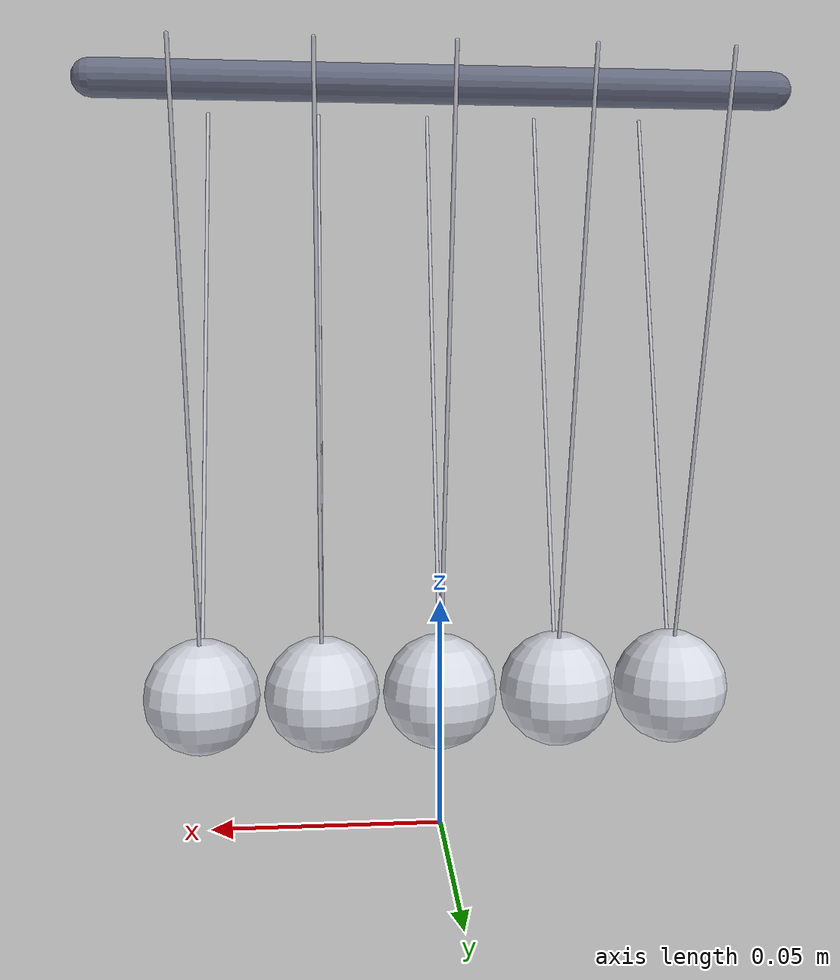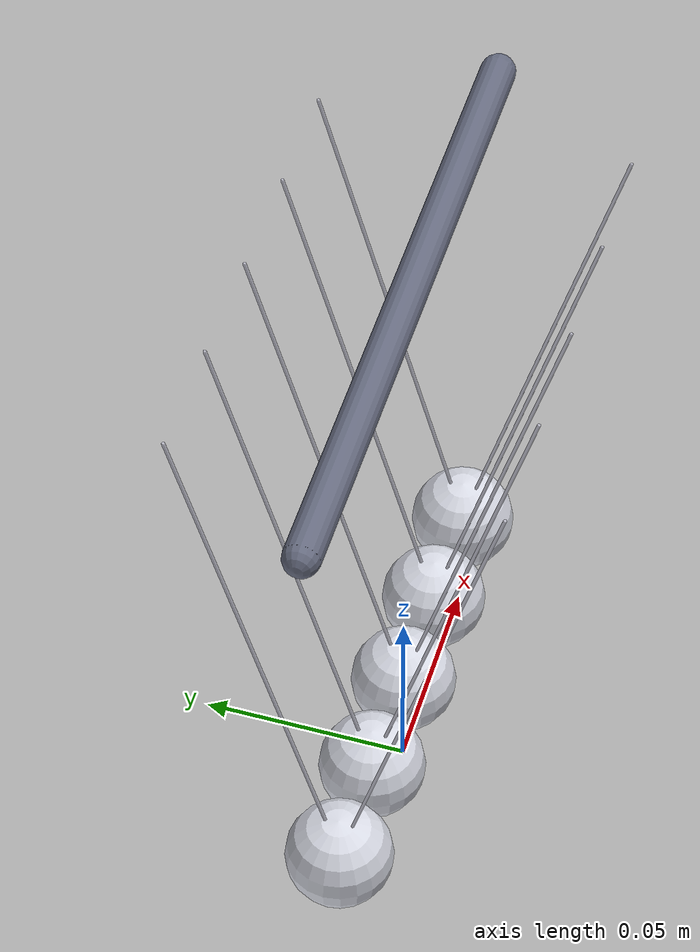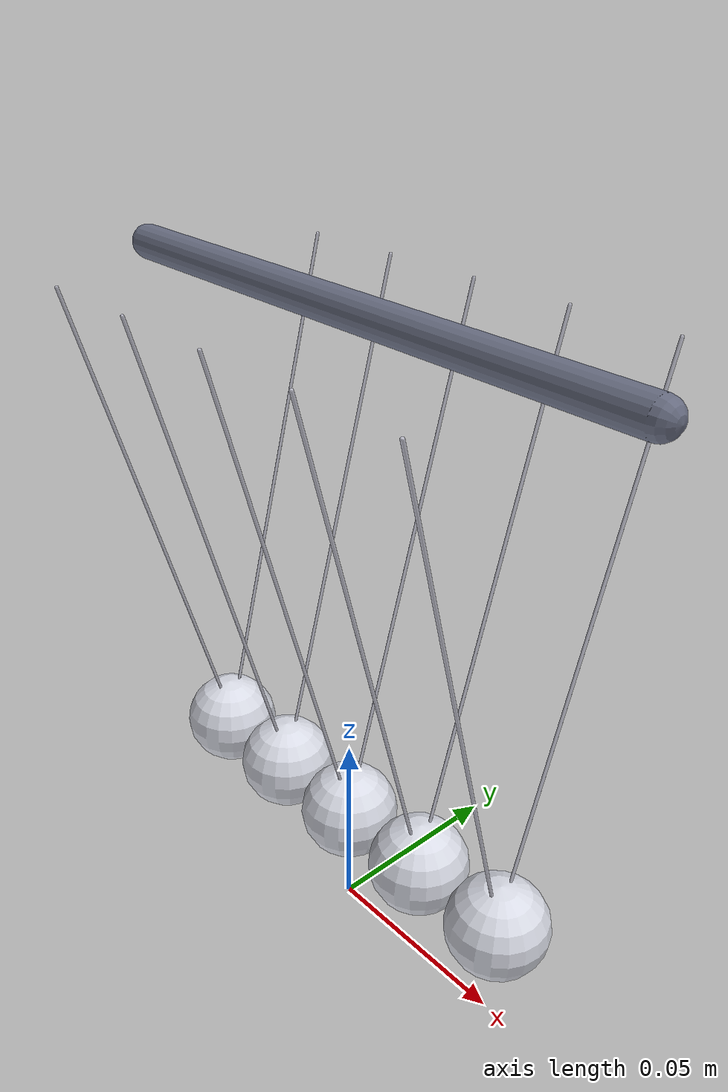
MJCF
<mujoco model="newtons_cradle">
  <compiler angle="radian" />
  <option timestep="0.0005" gravity="0 0 -9.81" integrator="implicitfast" iterations="50" ls_iterations="50" tolerance="1e-12" />
  <default>
    <geom type="capsule" solref="-6000000 -20" solimp="0.98 0.999 0.0002" friction="0.001 0.0001 0.00001" />
    <joint damping="0.00002" />
  </default>
  <worldbody>
    <geom name="beam" type="capsule" contype="0" conaffinity="0" size="0.004" fromto="-0.07160 0 0.16000 0.07160 0 0.16000" rgba="0.4 0.42 0.5 1" />
    <body name="ball0" pos="-0.05160 0 0.16000">
      <joint name="pivot0" type="hinge" axis="0 1 0" pos="0 0 0" />
      <geom name="wireL0" type="capsule" contype="0" conaffinity="0" size="0.0004" fromto="0 0.03500 0 0 0 -0.13000" rgba="0.75 0.75 0.8 1" />
      <geom name="wireR0" type="capsule" contype="0" conaffinity="0" size="0.0004" fromto="0 -0.03500 0 0 0 -0.13000" rgba="0.75 0.75 0.8 1" />
      <geom name="ball0" type="sphere" size="0.01250" pos="0 0 -0.13000" density="7800" condim="3" rgba="0.85 0.86 0.9 1" />
    </body>
    <body name="ball1" pos="-0.02580 0 0.16000">
      <joint name="pivot1" type="hinge" axis="0 1 0" pos="0 0 0" />
      <geom name="wireL1" type="capsule" contype="0" conaffinity="0" size="0.0004" fromto="0 0.03500 0 0 0 -0.13000" rgba="0.75 0.75 0.8 1" />
      <geom name="wireR1" type="capsule" contype="0" conaffinity="0" size="0.0004" fromto="0 -0.03500 0 0 0 -0.13000" rgba="0.75 0.75 0.8 1" />
      <geom name="ball1" type="sphere" size="0.01250" pos="0 0 -0.13000" density="7800" condim="3" rgba="0.85 0.86 0.9 1" />
    </body>
    <body name="ball2" pos="0.00000 0 0.16000">
      <joint name="pivot2" type="hinge" axis="0 1 0" pos="0 0 0" />
      <geom name="wireL2" type="capsule" contype="0" conaffinity="0" size="0.0004" fromto="0 0.03500 0 0 0 -0.13000" rgba="0.75 0.75 0.8 1" />
      <geom name="wireR2" type="capsule" contype="0" conaffinity="0" size="0.0004" fromto="0 -0.03500 0 0 0 -0.13000" rgba="0.75 0.75 0.8 1" />
      <geom name="ball2" type="sphere" size="0.01250" pos="0 0 -0.13000" density="7800" condim="3" rgba="0.85 0.86 0.9 1" />
    </body>
    <body name="ball3" pos="0.02580 0 0.16000">
      <joint name="pivot3" type="hinge" axis="0 1 0" pos="0 0 0" />
      <geom name="wireL3" type="capsule" contype="0" conaffinity="0" size="0.0004" fromto="0 0.03500 0 0 0 -0.13000" rgba="0.75 0.75 0.8 1" />
      <geom name="wireR3" type="capsule" contype="0" conaffinity="0" size="0.0004" fromto="0 -0.03500 0 0 0 -0.13000" rgba="0.75 0.75 0.8 1" />
      <geom name="ball3" type="sphere" size="0.01250" pos="0 0 -0.13000" density="7800" condim="3" rgba="0.85 0.86 0.9 1" />
    </body>
    <body name="ball4" pos="0.05160 0 0.16000">
      <joint name="pivot4" type="hinge" axis="0 1 0" pos="0 0 0" />
      <geom name="wireL4" type="capsule" contype="0" conaffinity="0" size="0.0004" fromto="0 0.03500 0 0 0 -0.13000" rgba="0.75 0.75 0.8 1" />
      <geom name="wireR4" type="capsule" contype="0" conaffinity="0" size="0.0004" fromto="0 -0.03500 0 0 0 -0.13000" rgba="0.75 0.75 0.8 1" />
      <geom name="ball4" type="sphere" size="0.01250" pos="0 0 -0.13000" density="7800" condim="3" rgba="0.85 0.86 0.9 1" />
    </body>
  </worldbody>
  <keyframe>
    <key name="drawn_back" qpos="0.62000 0.00000 0.00000 0.00000 0.00000" qvel="0.00000 0.00000 0.00000 0.00000 0.00000" />
  </keyframe>
</mujoco>
